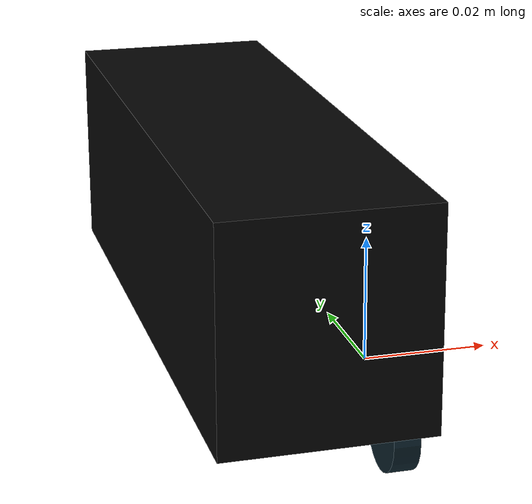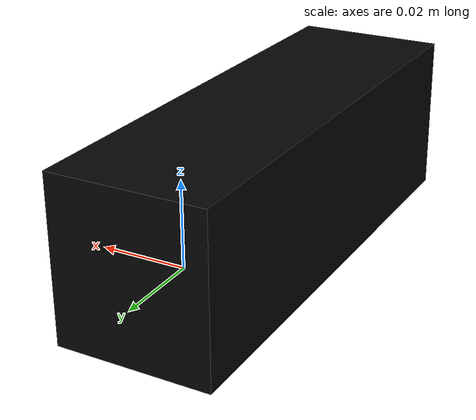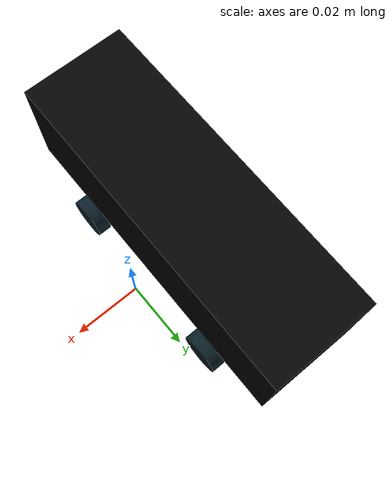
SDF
<?xml version="1.0"?>
<sdf version="1.9">
  <model name="d435_camera_head">
    <static>true</static>

    <link name="camera_link">
      <visual name="downward_camera_head_visual">
        <pose>-0.020 0 0.025 0 0 0</pose>
        <geometry>
          <box>
            <size>0.030 0.095 0.032</size>
          </box>
        </geometry>
        <material>
          <ambient>0.01 0.01 0.01 1</ambient>
          <diffuse>0.02 0.02 0.02 1</diffuse>
          <specular>0.14 0.14 0.14 1</specular>
        </material>
      </visual>
      <collision name="downward_camera_head_collision">
        <pose>-0.020 0 0.025 0 0 0</pose>
        <geometry>
          <box>
            <size>0.030 0.095 0.032</size>
          </box>
        </geometry>
      </collision>

      <visual name="lens_down_left_visual">
        <pose>-0.004 -0.026 0.000 0 1.5708 0</pose>
        <geometry>
          <cylinder>
            <radius>0.006</radius>
            <length>0.004</length>
          </cylinder>
        </geometry>
        <material>
          <ambient>0.03 0.07 0.09 1</ambient>
          <diffuse>0.04 0.12 0.16 1</diffuse>
          <specular>0.30 0.30 0.30 1</specular>
        </material>
      </visual>

      <visual name="lens_down_right_visual">
        <pose>-0.004 0.026 0.000 0 1.5708 0</pose>
        <geometry>
          <cylinder>
            <radius>0.006</radius>
            <length>0.004</length>
          </cylinder>
        </geometry>
        <material>
          <ambient>0.03 0.07 0.09 1</ambient>
          <diffuse>0.04 0.12 0.16 1</diffuse>
          <specular>0.30 0.30 0.30 1</specular>
        </material>
      </visual>

      <sensor name="target_rgb_camera" type="camera">
        <pose>0 0 0 0 0 0</pose>
        <camera>
          <horizontal_fov>0.72</horizontal_fov>
          <image>
            <width>640</width>
            <height>480</height>
            <format>R8G8B8</format>
          </image>
          <clip>
            <near>0.02</near>
            <far>2.0</far>
          </clip>
        </camera>
        <always_on>1</always_on>
        <update_rate>10</update_rate>
        <visualize>true</visualize>
        <topic>ghost_mgg/d435/color/image_raw</topic>
      </sensor>

      <sensor name="target_depth_camera" type="depth_camera">
        <pose>0 0 0 0 0 0</pose>
        <camera>
          <horizontal_fov>0.72</horizontal_fov>
          <image>
            <width>640</width>
            <height>480</height>
            <format>R_FLOAT32</format>
          </image>
          <clip>
            <near>0.02</near>
            <far>2.0</far>
          </clip>
        </camera>
        <always_on>1</always_on>
        <update_rate>10</update_rate>
        <visualize>false</visualize>
        <topic>ghost_mgg/d435/depth/image_rect_raw</topic>
      </sensor>

      <sensor name="target_infra1_camera" type="camera">
        <pose>0 -0.026 0 0 0 0</pose>
        <camera>
          <horizontal_fov>0.72</horizontal_fov>
          <image>
            <width>640</width>
            <height>480</height>
            <format>L8</format>
          </image>
          <clip>
            <near>0.02</near>
            <far>2.0</far>
          </clip>
        </camera>
        <always_on>1</always_on>
        <update_rate>10</update_rate>
        <visualize>false</visualize>
        <topic>ghost_mgg/d435/infra1/image_rect_raw</topic>
      </sensor>

      <sensor name="target_infra2_camera" type="camera">
        <pose>0 0.026 0 0 0 0</pose>
        <camera>
          <horizontal_fov>0.72</horizontal_fov>
          <image>
            <width>640</width>
            <height>480</height>
            <format>L8</format>
          </image>
          <clip>
            <near>0.02</near>
            <far>2.0</far>
          </clip>
        </camera>
        <always_on>1</always_on>
        <update_rate>10</update_rate>
        <visualize>false</visualize>
        <topic>ghost_mgg/d435/infra2/image_rect_raw</topic>
      </sensor>
    </link>
  </model>
</sdf>
